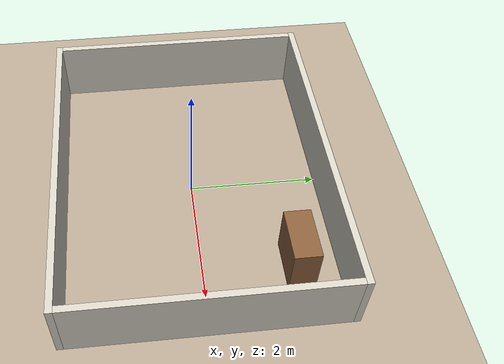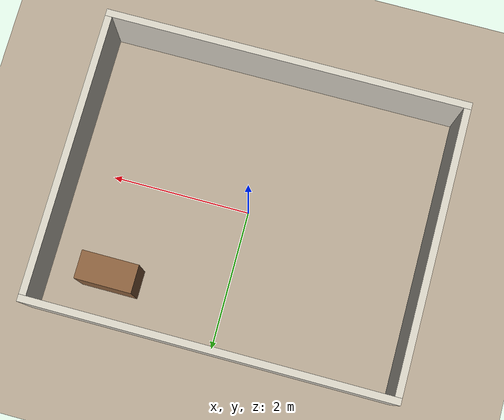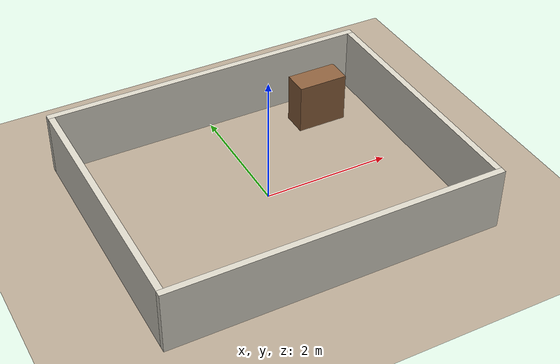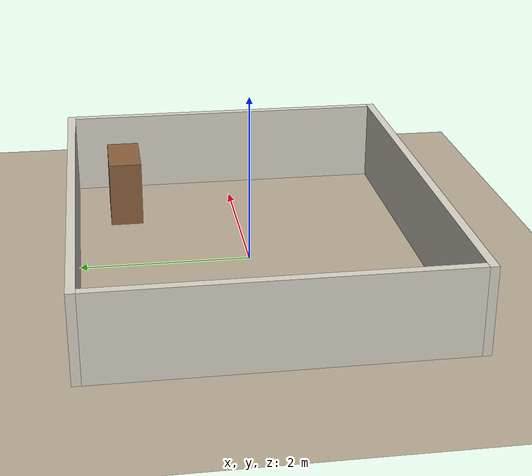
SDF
<?xml version="1.0"?>
<!--
  A minimal walled room, 5 m x 4 m, used until the shared house world from
  home-robot-common is integrated. The robot spawns at its center facing +x;
  the east wall is 2.5 m ahead.
-->
<sdf version="1.9">
  <world name="minimal_room">
    <physics name="1ms" type="ignored">
      <max_step_size>0.001</max_step_size>
      <real_time_factor>1.0</real_time_factor>
    </physics>

    <plugin filename="gz-sim-physics-system" name="gz::sim::systems::Physics"/>
    <plugin filename="gz-sim-user-commands-system" name="gz::sim::systems::UserCommands"/>
    <plugin filename="gz-sim-scene-broadcaster-system" name="gz::sim::systems::SceneBroadcaster"/>
    <plugin filename="gz-sim-sensors-system" name="gz::sim::systems::Sensors">
      <render_engine>ogre2</render_engine>
    </plugin>
    <plugin filename="gz-sim-imu-system" name="gz::sim::systems::Imu"/>

    <scene>
      <ambient>0.6 0.6 0.6 1</ambient>
      <background>0.8 0.85 0.9 1</background>
      <grid>false</grid>
    </scene>

    <light type="directional" name="sun">
      <cast_shadows>true</cast_shadows>
      <pose>0 0 10 0 0 0</pose>
      <diffuse>0.8 0.8 0.8 1</diffuse>
      <specular>0.2 0.2 0.2 1</specular>
      <direction>-0.5 0.1 -0.9</direction>
    </light>

    <model name="floor">
      <static>true</static>
      <link name="link">
        <collision name="collision">
          <geometry><plane><normal>0 0 1</normal><size>20 20</size></plane></geometry>
        </collision>
        <visual name="visual">
          <geometry><plane><normal>0 0 1</normal><size>20 20</size></plane></geometry>
          <material>
            <ambient>0.72 0.66 0.58 1</ambient>
            <diffuse>0.72 0.66 0.58 1</diffuse>
          </material>
        </visual>
      </link>
    </model>

    <model name="north_wall">
      <static>true</static>
      <pose>0.0 2.05 0.5 0 0 0</pose>
      <link name="link">
        <collision name="collision">
          <geometry><box><size>5.2 0.1 1.0</size></box></geometry>
        </collision>
        <visual name="visual">
          <geometry><box><size>5.2 0.1 1.0</size></box></geometry>
          <material>
            <ambient>0.85 0.83 0.78 1</ambient>
            <diffuse>0.85 0.83 0.78 1</diffuse>
          </material>
        </visual>
      </link>
    </model>
    <model name="south_wall">
      <static>true</static>
      <pose>0.0 -2.05 0.5 0 0 0</pose>
      <link name="link">
        <collision name="collision">
          <geometry><box><size>5.2 0.1 1.0</size></box></geometry>
        </collision>
        <visual name="visual">
          <geometry><box><size>5.2 0.1 1.0</size></box></geometry>
          <material>
            <ambient>0.85 0.83 0.78 1</ambient>
            <diffuse>0.85 0.83 0.78 1</diffuse>
          </material>
        </visual>
      </link>
    </model>
    <model name="east_wall">
      <static>true</static>
      <pose>2.55 0.0 0.5 0 0 0</pose>
      <link name="link">
        <collision name="collision">
          <geometry><box><size>0.1 4.0 1.0</size></box></geometry>
        </collision>
        <visual name="visual">
          <geometry><box><size>0.1 4.0 1.0</size></box></geometry>
          <material>
            <ambient>0.85 0.83 0.78 1</ambient>
            <diffuse>0.85 0.83 0.78 1</diffuse>
          </material>
        </visual>
      </link>
    </model>
    <model name="west_wall">
      <static>true</static>
      <pose>-2.55 0.0 0.5 0 0 0</pose>
      <link name="link">
        <collision name="collision">
          <geometry><box><size>0.1 4.0 1.0</size></box></geometry>
        </collision>
        <visual name="visual">
          <geometry><box><size>0.1 4.0 1.0</size></box></geometry>
          <material>
            <ambient>0.85 0.83 0.78 1</ambient>
            <diffuse>0.85 0.83 0.78 1</diffuse>
          </material>
        </visual>
      </link>
    </model>
    <model name="cabinet">
      <static>true</static>
      <pose>1.6 1.4 0.4 0 0 0</pose>
      <link name="link">
        <collision name="collision">
          <geometry><box><size>0.8 0.4 0.8</size></box></geometry>
        </collision>
        <visual name="visual">
          <geometry><box><size>0.8 0.4 0.8</size></box></geometry>
          <material>
            <ambient>0.55 0.38 0.24 1</ambient>
            <diffuse>0.55 0.38 0.24 1</diffuse>
          </material>
        </visual>
      </link>
    </model>
  </world>
</sdf>
